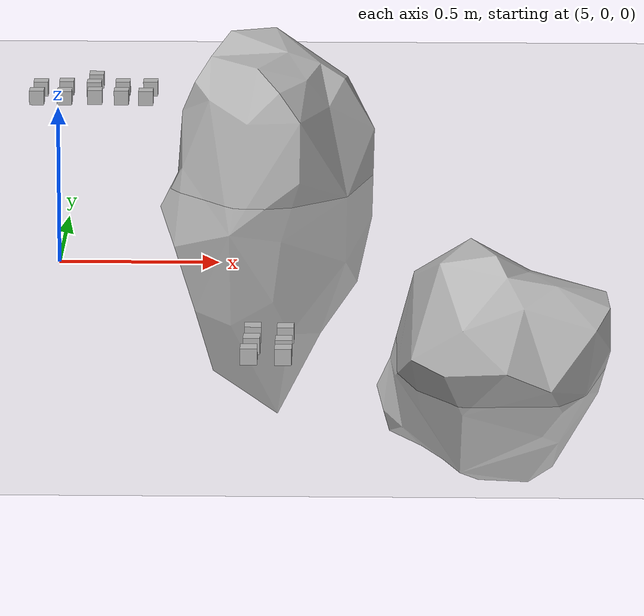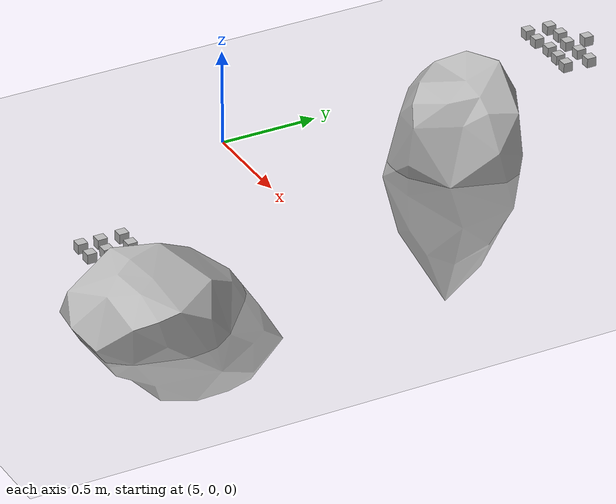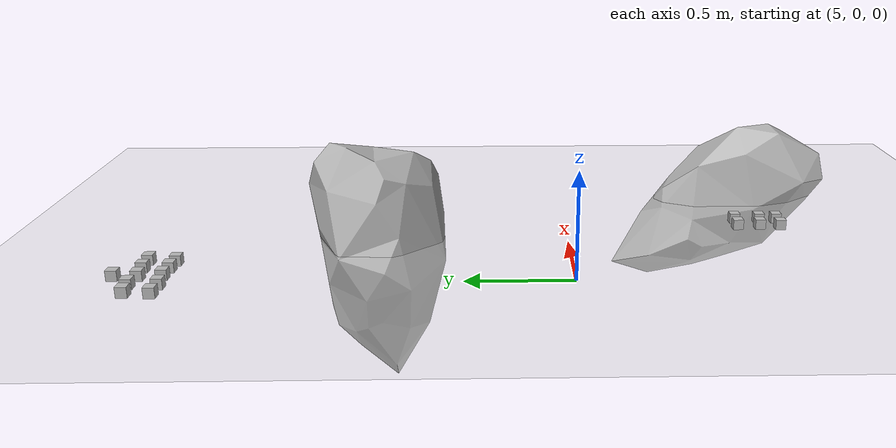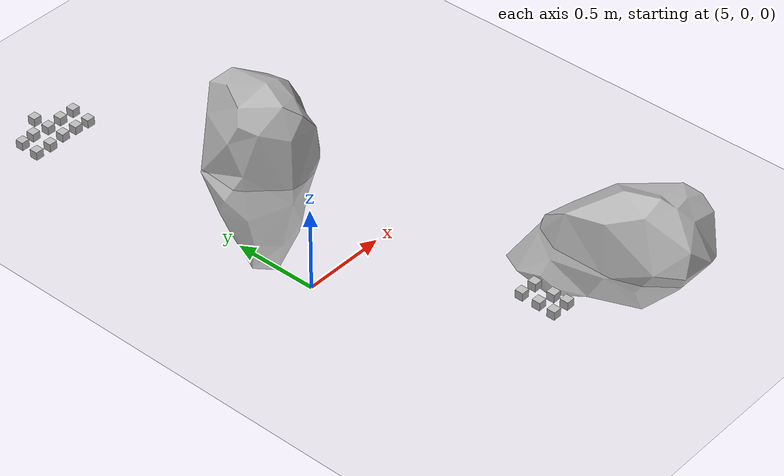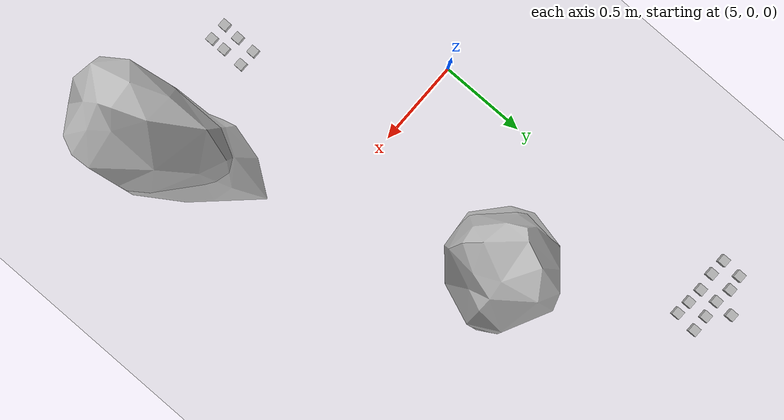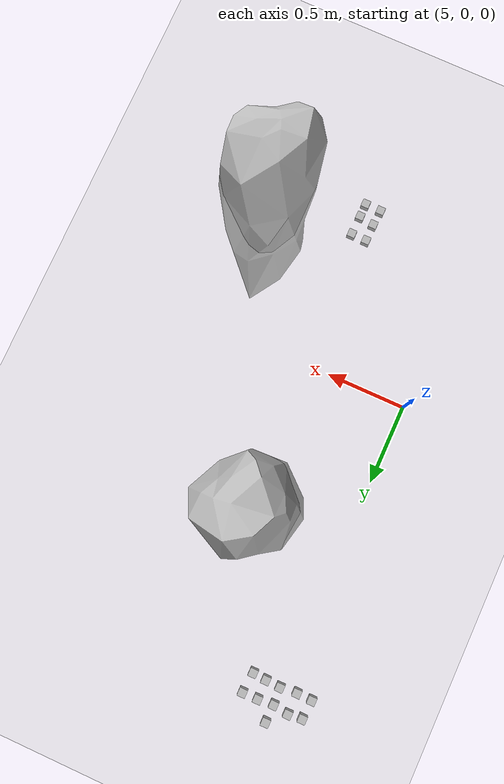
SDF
<sdf version="1.6">
 <world name="default">
  <model name="boulder2_1">
   <link name="link_1">
    <inertial>
     <mass>1</mass>
     <inertia>
      <ixx>0.166667</ixx>
      <ixy>0</ixy>
      <ixz>0</ixz>
      <iyy>0.166667</iyy>
      <iyz>0</iyz>
      <izz>0.166667</izz>
     </inertia>
    </inertial>
    <visual name="visual">
     <geometry><mesh><uri>model://boulder2/boulder2.dae</uri><scale>1 1 1</scale></mesh></geometry>
     <material>
      <lighting>1</lighting>
      <script><uri>model://boulder2</uri><name>boulder2/Diffuse</name></script>
     </material>
    </visual>
    <collision name="collision">
     <geometry><mesh><uri>model://boulder2/boulder2.dae</uri><scale>1 1 1</scale></mesh></geometry>
     <surface>
      <friction>
       <ode><mu>1</mu><mu2>1</mu2><fdir1>0 0 0</fdir1><slip1>0</slip1><slip2>0</slip2></ode>
       <torsional>
        <coefficient>1</coefficient>
        <patch_radius>0</patch_radius>
        <surface_radius>0</surface_radius>
        <use_patch_radius>1</use_patch_radius>
        <ode><slip>0</slip></ode>
       </torsional>
      </friction>
      <bounce><restitution_coefficient>0</restitution_coefficient><threshold>1e+06</threshold></bounce>
      <contact>
       <collide_without_contact>0</collide_without_contact>
       <collide_without_contact_bitmask>1</collide_without_contact_bitmask>
       <collide_bitmask>1</collide_bitmask>
       <ode>
        <soft_cfm>0</soft_cfm>
        <soft_erp>0.2</soft_erp>
        <kp>1e+13</kp>
        <kd>1</kd>
        <max_vel>0.01</max_vel>
        <min_depth>0</min_depth>
       </ode>
       <bullet>
        <split_impulse>1</split_impulse>
        <split_impulse_penetration_threshold>-0.01</split_impulse_penetration_threshold>
        <soft_cfm>0</soft_cfm>
        <soft_erp>0.2</soft_erp>
        <kp>1e+13</kp>
        <kd>1</kd>
       </bullet>
      </contact>
     </surface>
    </collision>
   </link>
   <static>1</static>
   <pose>5.61873 0.920096 0.15322 -1.56381 0.000394 -2.18343</pose>
  </model>
  <model name="boulder2_2_clone_clone">
   <link name="link_1">
    <inertial>
     <mass>1</mass>
     <inertia>
      <ixx>0.166667</ixx>
      <ixy>0</ixy>
      <ixz>0</ixz>
      <iyy>0.166667</iyy>
      <iyz>0</iyz>
      <izz>0.166667</izz>
     </inertia>
    </inertial>
    <visual name="visual">
     <geometry><mesh><uri>model://boulder2/boulder2.dae</uri><scale>1 1 1</scale></mesh></geometry>
     <material>
      <lighting>1</lighting>
      <script><uri>model://boulder2</uri><name>boulder2/Diffuse</name></script>
     </material>
    </visual>
    <collision name="collision">
     <geometry><mesh><uri>model://boulder2/boulder2.dae</uri><scale>1 1 1</scale></mesh></geometry>
     <surface>
      <friction>
       <ode><mu>1</mu><mu2>1</mu2><fdir1>0 0 0</fdir1><slip1>0</slip1><slip2>0</slip2></ode>
       <torsional>
        <coefficient>1</coefficient>
        <patch_radius>0</patch_radius>
        <surface_radius>0</surface_radius>
        <use_patch_radius>1</use_patch_radius>
        <ode><slip>0</slip></ode>
       </torsional>
      </friction>
      <bounce><restitution_coefficient>0</restitution_coefficient><threshold>1e+06</threshold></bounce>
      <contact>
       <collide_without_contact>0</collide_without_contact>
       <collide_without_contact_bitmask>1</collide_without_contact_bitmask>
       <collide_bitmask>1</collide_bitmask>
       <ode>
        <soft_cfm>0</soft_cfm>
        <soft_erp>0.2</soft_erp>
        <kp>1e+13</kp>
        <kd>1</kd>
        <max_vel>0.01</max_vel>
        <min_depth>0</min_depth>
       </ode>
       <bullet>
        <split_impulse>1</split_impulse>
        <split_impulse_penetration_threshold>-0.01</split_impulse_penetration_threshold>
        <soft_cfm>0</soft_cfm>
        <soft_erp>0.2</soft_erp>
        <kp>1e+13</kp>
        <kd>1</kd>
       </bullet>
      </contact>
     </surface>
    </collision>
   </link>
   <static>1</static>
   <pose>6.39137 -1.12134 0.064215 -0.59155 0.472681 0</pose>
  </model>
  <model name="ground_plane">
   <static>1</static>
   <link name="link">
    <collision name="collision">
     <geometry><plane><normal>0 0 1</normal><size>100 100</size></plane></geometry>
     <surface><friction><ode><mu>100</mu><mu2>50</mu2></ode></friction></surface>
    </collision>
    <visual name="visual">
     <cast_shadows>0</cast_shadows>
     <geometry><plane><normal>0 0 1</normal><size>100 100</size></plane></geometry>
     <material>
      <script><uri>file://media/materials/scripts/gazebo.material</uri><name>Gazebo/Grey</name></script>
     </material>
    </visual>
   </link>
  </model>
  <model name="at0_12">
   <static>0</static>
   <link name="link">
    <inertial>
     <mass>0.01</mass>
     <inertia><ixx>4e-05</ixx><ixy>0</ixy><ixz>0</ixz><iyy>4e-05</iyy><iyz>0</iyz><izz>4e-05</izz></inertia>
    </inertial>
    <visual name="visual">
     <geometry><box><size>0.05 0.05 0.05</size></box></geometry>
     <material>
      <script>
       <uri>model://at0/materials/scripts</uri>
       <uri>model://at0/materials/textures</uri>
       <name>at0/Diffuse</name>
      </script>
     </material>
    </visual>
    <collision name="collision">
     <geometry><box><size>0.05 0.05 0.05</size></box></geometry>
     <surface><friction><ode><mu>0.8</mu><mu2>0.7</mu2></ode></friction></surface>
    </collision>
   </link>
   <pose>5.00629 2.0256 0.045 0 -0 0</pose>
  </model>
  <model name="at0_17">
   <static>0</static>
   <link name="link">
    <inertial>
     <mass>0.01</mass>
     <inertia><ixx>4e-05</ixx><ixy>0</ixy><ixz>0</ixz><iyy>4e-05</iyy><iyz>0</iyz><izz>4e-05</izz></inertia>
    </inertial>
    <visual name="visual">
     <geometry><box><size>0.05 0.05 0.05</size></box></geometry>
     <material>
      <script>
       <uri>model://at0/materials/scripts</uri>
       <uri>model://at0/materials/textures</uri>
       <name>at0/Diffuse</name>
      </script>
     </material>
    </visual>
    <collision name="collision">
     <geometry><box><size>0.05 0.05 0.05</size></box></geometry>
     <surface><friction><ode><mu>0.8</mu><mu2>0.7</mu2></ode></friction></surface>
    </collision>
   </link>
   <pose>5.00356 1.91692 0.045 0 -0 0</pose>
  </model>
  <model name="at0_19">
   <static>0</static>
   <link name="link">
    <inertial>
     <mass>0.01</mass>
     <inertia><ixx>4e-05</ixx><ixy>0</ixy><ixz>0</ixz><iyy>4e-05</iyy><iyz>0</iyz><izz>4e-05</izz></inertia>
    </inertial>
    <visual name="visual">
     <geometry><box><size>0.05 0.05 0.05</size></box></geometry>
     <material>
      <script>
       <uri>model://at0/materials/scripts</uri>
       <uri>model://at0/materials/textures</uri>
       <name>at0/Diffuse</name>
      </script>
     </material>
    </visual>
    <collision name="collision">
     <geometry><box><size>0.05 0.05 0.05</size></box></geometry>
     <surface><friction><ode><mu>0.8</mu><mu2>0.7</mu2></ode></friction></surface>
    </collision>
   </link>
   <pose>5.01094 1.8122 0.045 0 -0 0</pose>
  </model>
  <model name="at0_23">
   <static>0</static>
   <link name="link">
    <inertial>
     <mass>0.01</mass>
     <inertia><ixx>4e-05</ixx><ixy>0</ixy><ixz>0</ixz><iyy>4e-05</iyy><iyz>0</iyz><izz>4e-05</izz></inertia>
    </inertial>
    <visual name="visual">
     <geometry><box><size>0.05 0.05 0.05</size></box></geometry>
     <material>
      <script>
       <uri>model://at0/materials/scripts</uri>
       <uri>model://at0/materials/textures</uri>
       <name>at0/Diffuse</name>
      </script>
     </material>
    </visual>
    <collision name="collision">
     <geometry><box><size>0.05 0.05 0.05</size></box></geometry>
     <surface><friction><ode><mu>0.8</mu><mu2>0.7</mu2></ode></friction></surface>
    </collision>
   </link>
   <pose>5.1022 1.92591 0.045 0 -0 0</pose>
  </model>
  <model name="at0_24">
   <static>0</static>
   <link name="link">
    <inertial>
     <mass>0.01</mass>
     <inertia><ixx>4e-05</ixx><ixy>0</ixy><ixz>0</ixz><iyy>4e-05</iyy><iyz>0</iyz><izz>4e-05</izz></inertia>
    </inertial>
    <visual name="visual">
     <geometry><box><size>0.05 0.05 0.05</size></box></geometry>
     <material>
      <script>
       <uri>model://at0/materials/scripts</uri>
       <uri>model://at0/materials/textures</uri>
       <name>at0/Diffuse</name>
      </script>
     </material>
    </visual>
    <collision name="collision">
     <geometry><box><size>0.05 0.05 0.05</size></box></geometry>
     <surface><friction><ode><mu>0.8</mu><mu2>0.7</mu2></ode></friction></surface>
    </collision>
   </link>
   <pose>5.18728 1.8004 0.045 0 -0 0</pose>
  </model>
  <model name="at0_25">
   <static>0</static>
   <link name="link">
    <inertial>
     <mass>0.01</mass>
     <inertia><ixx>4e-05</ixx><ixy>0</ixy><ixz>0</ixz><iyy>4e-05</iyy><iyz>0</iyz><izz>4e-05</izz></inertia>
    </inertial>
    <visual name="visual">
     <geometry><box><size>0.05 0.05 0.05</size></box></geometry>
     <material>
      <script>
       <uri>model://at0/materials/scripts</uri>
       <uri>model://at0/materials/textures</uri>
       <name>at0/Diffuse</name>
      </script>
     </material>
    </visual>
    <collision name="collision">
     <geometry><box><size>0.05 0.05 0.05</size></box></geometry>
     <surface><friction><ode><mu>0.8</mu><mu2>0.7</mu2></ode></friction></surface>
    </collision>
   </link>
   <pose>4.81081 1.80355 0.045 0 -0 0</pose>
  </model>
  <model name="at0_26">
   <static>0</static>
   <link name="link">
    <inertial>
     <mass>0.01</mass>
     <inertia><ixx>4e-05</ixx><ixy>0</ixy><ixz>0</ixz><iyy>4e-05</iyy><iyz>0</iyz><izz>4e-05</izz></inertia>
    </inertial>
    <visual name="visual">
     <geometry><box><size>0.05 0.05 0.05</size></box></geometry>
     <material>
      <script>
       <uri>model://at0/materials/scripts</uri>
       <uri>model://at0/materials/textures</uri>
       <name>at0/Diffuse</name>
      </script>
     </material>
    </visual>
    <collision name="collision">
     <geometry><box><size>0.05 0.05 0.05</size></box></geometry>
     <surface><friction><ode><mu>0.8</mu><mu2>0.7</mu2></ode></friction></surface>
    </collision>
   </link>
   <pose>4.90711 1.93152 0.045 0 -0 0</pose>
  </model>
  <model name="at0_29">
   <static>0</static>
   <link name="link">
    <inertial>
     <mass>0.01</mass>
     <inertia><ixx>4e-05</ixx><ixy>0</ixy><ixz>0</ixz><iyy>4e-05</iyy><iyz>0</iyz><izz>4e-05</izz></inertia>
    </inertial>
    <visual name="visual">
     <geometry><box><size>0.05 0.05 0.05</size></box></geometry>
     <material>
      <script>
       <uri>model://at0/materials/scripts</uri>
       <uri>model://at0/materials/textures</uri>
       <name>at0/Diffuse</name>
      </script>
     </material>
    </visual>
    <collision name="collision">
     <geometry><box><size>0.05 0.05 0.05</size></box></geometry>
     <surface><friction><ode><mu>0.8</mu><mu2>0.7</mu2></ode></friction></surface>
    </collision>
   </link>
   <pose>4.81855 1.92091 0.045 0 -0 0</pose>
  </model>
  <model name="at0_30">
   <static>0</static>
   <link name="link">
    <inertial>
     <mass>0.01</mass>
     <inertia><ixx>4e-05</ixx><ixy>0</ixy><ixz>0</ixz><iyy>4e-05</iyy><iyz>0</iyz><izz>4e-05</izz></inertia>
    </inertial>
    <visual name="visual">
     <geometry><box><size>0.05 0.05 0.05</size></box></geometry>
     <material>
      <script>
       <uri>model://at0/materials/scripts</uri>
       <uri>model://at0/materials/textures</uri>
       <name>at0/Diffuse</name>
      </script>
     </material>
    </visual>
    <collision name="collision">
     <geometry><box><size>0.05 0.05 0.05</size></box></geometry>
     <surface><friction><ode><mu>0.8</mu><mu2>0.7</mu2></ode></friction></surface>
    </collision>
   </link>
   <pose>4.90694 1.80076 0.045 0 -0 0</pose>
  </model>
  <model name="at0_33">
   <static>0</static>
   <link name="link">
    <inertial>
     <mass>0.01</mass>
     <inertia><ixx>4e-05</ixx><ixy>0</ixy><ixz>0</ixz><iyy>4e-05</iyy><iyz>0</iyz><izz>4e-05</izz></inertia>
    </inertial>
    <visual name="visual">
     <geometry><box><size>0.05 0.05 0.05</size></box></geometry>
     <material>
      <script>
       <uri>model://at0/materials/scripts</uri>
       <uri>model://at0/materials/textures</uri>
       <name>at0/Diffuse</name>
      </script>
     </material>
    </visual>
    <collision name="collision">
     <geometry><box><size>0.05 0.05 0.05</size></box></geometry>
     <surface><friction><ode><mu>0.8</mu><mu2>0.7</mu2></ode></friction></surface>
    </collision>
   </link>
   <pose>5.10254 1.80744 0.045 0 -0 0</pose>
  </model>
  <model name="at0_36">
   <static>0</static>
   <link name="link">
    <inertial>
     <mass>0.01</mass>
     <inertia><ixx>4e-05</ixx><ixy>0</ixy><ixz>0</ixz><iyy>4e-05</iyy><iyz>0</iyz><izz>4e-05</izz></inertia>
    </inertial>
    <visual name="visual">
     <geometry><box><size>0.05 0.05 0.05</size></box></geometry>
     <material>
      <script>
       <uri>model://at0/materials/scripts</uri>
       <uri>model://at0/materials/textures</uri>
       <name>at0/Diffuse</name>
      </script>
     </material>
    </visual>
    <collision name="collision">
     <geometry><box><size>0.05 0.05 0.05</size></box></geometry>
     <surface><friction><ode><mu>0.8</mu><mu2>0.7</mu2></ode></friction></surface>
    </collision>
   </link>
   <pose>5.19848 1.92752 0.045 0 -0 0</pose>
  </model>
  <model name="at0_65">
   <static>0</static>
   <link name="link">
    <inertial>
     <mass>0.01</mass>
     <inertia><ixx>4e-05</ixx><ixy>0</ixy><ixz>0</ixz><iyy>4e-05</iyy><iyz>0</iyz><izz>4e-05</izz></inertia>
    </inertial>
    <visual name="visual">
     <geometry><box><size>0.05 0.05 0.05</size></box></geometry>
     <material>
      <script>
       <uri>model://at0/materials/scripts</uri>
       <uri>model://at0/materials/textures</uri>
       <name>at0/Diffuse</name>
      </script>
     </material>
    </visual>
    <collision name="collision">
     <geometry><box><size>0.05 0.05 0.05</size></box></geometry>
     <surface><friction><ode><mu>0.8</mu><mu2>0.7</mu2></ode></friction></surface>
    </collision>
   </link>
   <pose>5.72216 -0.983534 0.045 0 -0 0</pose>
  </model>
  <model name="at0_66">
   <static>0</static>
   <link name="link">
    <inertial>
     <mass>0.01</mass>
     <inertia><ixx>4e-05</ixx><ixy>0</ixy><ixz>0</ixz><iyy>4e-05</iyy><iyz>0</iyz><izz>4e-05</izz></inertia>
    </inertial>
    <visual name="visual">
     <geometry><box><size>0.05 0.05 0.05</size></box></geometry>
     <material>
      <script>
       <uri>model://at0/materials/scripts</uri>
       <uri>model://at0/materials/textures</uri>
       <name>at0/Diffuse</name>
      </script>
     </material>
    </visual>
    <collision name="collision">
     <geometry><box><size>0.05 0.05 0.05</size></box></geometry>
     <surface><friction><ode><mu>0.8</mu><mu2>0.7</mu2></ode></friction></surface>
    </collision>
   </link>
   <pose>5.72207 -1.06974 0.045 0 -0 0</pose>
  </model>
  <model name="at0_67">
   <static>0</static>
   <link name="link">
    <inertial>
     <mass>0.01</mass>
     <inertia><ixx>4e-05</ixx><ixy>0</ixy><ixz>0</ixz><iyy>4e-05</iyy><iyz>0</iyz><izz>4e-05</izz></inertia>
    </inertial>
    <visual name="visual">
     <geometry><box><size>0.05 0.05 0.05</size></box></geometry>
     <material>
      <script>
       <uri>model://at0/materials/scripts</uri>
       <uri>model://at0/materials/textures</uri>
       <name>at0/Diffuse</name>
      </script>
     </material>
    </visual>
    <collision name="collision">
     <geometry><box><size>0.05 0.05 0.05</size></box></geometry>
     <surface><friction><ode><mu>0.8</mu><mu2>0.7</mu2></ode></friction></surface>
    </collision>
   </link>
   <pose>5.725 -0.860378 0.045 0 -0 0</pose>
  </model>
  <model name="at0_68">
   <static>0</static>
   <link name="link">
    <inertial>
     <mass>0.01</mass>
     <inertia><ixx>4e-05</ixx><ixy>0</ixy><ixz>0</ixz><iyy>4e-05</iyy><iyz>0</iyz><izz>4e-05</izz></inertia>
    </inertial>
    <visual name="visual">
     <geometry><box><size>0.05 0.05 0.05</size></box></geometry>
     <material>
      <script>
       <uri>model://at0/materials/scripts</uri>
       <uri>model://at0/materials/textures</uri>
       <name>at0/Diffuse</name>
      </script>
     </material>
    </visual>
    <collision name="collision">
     <geometry><box><size>0.05 0.05 0.05</size></box></geometry>
     <surface><friction><ode><mu>0.8</mu><mu2>0.7</mu2></ode></friction></surface>
    </collision>
   </link>
   <pose>5.62663 -0.967132 0.045 0 -0 0</pose>
  </model>
  <model name="at0_69">
   <static>0</static>
   <link name="link">
    <inertial>
     <mass>0.01</mass>
     <inertia><ixx>4e-05</ixx><ixy>0</ixy><ixz>0</ixz><iyy>4e-05</iyy><iyz>0</iyz><izz>4e-05</izz></inertia>
    </inertial>
    <visual name="visual">
     <geometry><box><size>0.05 0.05 0.05</size></box></geometry>
     <material>
      <script>
       <uri>model://at0/materials/scripts</uri>
       <uri>model://at0/materials/textures</uri>
       <name>at0/Diffuse</name>
      </script>
     </material>
    </visual>
    <collision name="collision">
     <geometry><box><size>0.05 0.05 0.05</size></box></geometry>
     <surface><friction><ode><mu>0.8</mu><mu2>0.7</mu2></ode></friction></surface>
    </collision>
   </link>
   <pose>5.62744 -0.856692 0.045 0 -0 0</pose>
  </model>
  <model name="at0_70">
   <static>0</static>
   <link name="link">
    <inertial>
     <mass>0.01</mass>
     <inertia><ixx>4e-05</ixx><ixy>0</ixy><ixz>0</ixz><iyy>4e-05</iyy><iyz>0</iyz><izz>4e-05</izz></inertia>
    </inertial>
    <visual name="visual">
     <geometry><box><size>0.05 0.05 0.05</size></box></geometry>
     <material>
      <script>
       <uri>model://at0/materials/scripts</uri>
       <uri>model://at0/materials/textures</uri>
       <name>at0/Diffuse</name>
      </script>
     </material>
    </visual>
    <collision name="collision">
     <geometry><box><size>0.05 0.05 0.05</size></box></geometry>
     <surface><friction><ode><mu>0.8</mu><mu2>0.7</mu2></ode></friction></surface>
    </collision>
   </link>
   <pose>5.62052 -1.06713 0.045 0 -0 0</pose>
  </model>
 </world>
</sdf>
